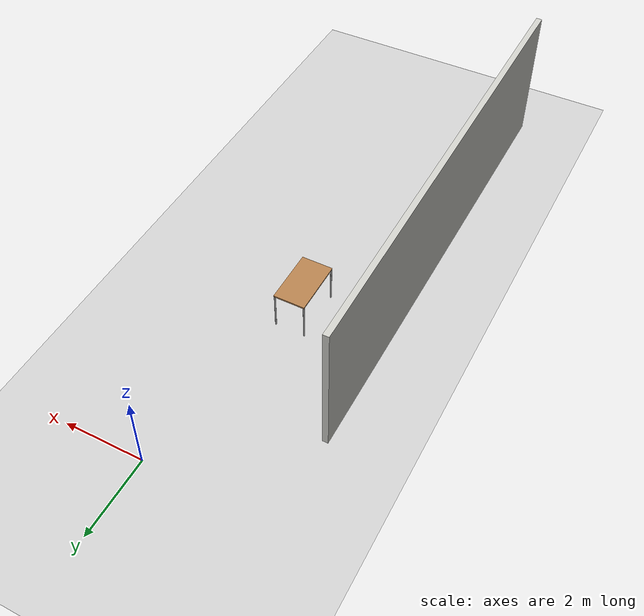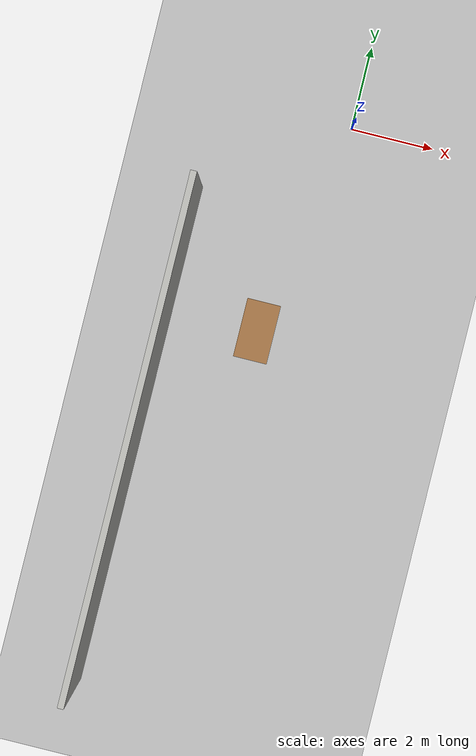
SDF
<sdf version="1.6">
 <world name="default">
  <model name="ground_plane">
   <static>1</static>
   <link name="link">
    <collision name="collision">
     <geometry><plane><normal>0 0 1</normal><size>100 100</size></plane></geometry>
     <surface><friction><ode><mu>100</mu><mu2>50</mu2></ode></friction></surface>
    </collision>
    <visual name="visual">
     <cast_shadows>0</cast_shadows>
     <geometry><plane><normal>0 0 1</normal><size>100 100</size></plane></geometry>
     <material>
      <script><uri>file://media/materials/scripts/gazebo.material</uri><name>Gazebo/Grey</name></script>
     </material>
    </visual>
   </link>
  </model>
  <model name="table_3_clone_clone_clone_0_clone">
   <static>0</static>
   <link name="link">
    <collision name="surface">
     <pose>0 0 1 0 -0 0</pose>
     <geometry><box><size>1.5 0.8 0.03</size></box></geometry>
     <surface><friction><ode><mu>0.6</mu><mu2>0.6</mu2></ode></friction></surface>
    </collision>
    <visual name="visual1">
     <pose>0 0 1 0 -0 0</pose>
     <geometry><box><size>1.4 0.8 0.04</size></box></geometry>
     <material>
      <script><uri>file://media/materials/scripts/gazebo.material</uri><name>Gazebo/Wood</name></script>
     </material>
    </visual>
    <collision name="front_left_leg">
     <pose>0.68 0.38 0.5 0 -0 0</pose>
     <geometry><cylinder><radius>0.02</radius><length>1</length></cylinder></geometry>
    </collision>
    <visual name="front_left_leg">
     <pose>0.68 0.38 0.5 0 -0 0</pose>
     <geometry><cylinder><radius>0.02</radius><length>1</length></cylinder></geometry>
     <material>
      <script><uri>file://media/materials/scripts/gazebo.material</uri><name>Gazebo/Grey</name></script>
     </material>
    </visual>
    <collision name="front_right_leg">
     <pose>0.68 -0.38 0.5 0 -0 0</pose>
     <geometry><cylinder><radius>0.02</radius><length>1</length></cylinder></geometry>
    </collision>
    <visual name="front_right_leg">
     <pose>0.68 -0.38 0.5 0 -0 0</pose>
     <geometry><cylinder><radius>0.02</radius><length>1</length></cylinder></geometry>
     <material>
      <script><uri>file://media/materials/scripts/gazebo.material</uri><name>Gazebo/Grey</name></script>
     </material>
    </visual>
    <collision name="back_right_leg">
     <pose>-0.68 -0.38 0.5 0 -0 0</pose>
     <geometry><cylinder><radius>0.02</radius><length>1</length></cylinder></geometry>
    </collision>
    <visual name="back_right_leg">
     <pose>-0.68 -0.38 0.5 0 -0 0</pose>
     <geometry><cylinder><radius>0.02</radius><length>1</length></cylinder></geometry>
     <material>
      <script><uri>file://media/materials/scripts/gazebo.material</uri><name>Gazebo/Grey</name></script>
     </material>
    </visual>
    <collision name="back_left_leg">
     <pose>-0.68 0.38 0.5 0 -0 0</pose>
     <geometry><cylinder><radius>0.02</radius><length>1</length></cylinder></geometry>
    </collision>
    <visual name="back_left_leg">
     <pose>-0.68 0.38 0.5 0 -0 0</pose>
     <geometry><cylinder><radius>0.02</radius><length>1</length></cylinder></geometry>
     <material>
      <script><uri>file://media/materials/scripts/gazebo.material</uri><name>Gazebo/Grey</name></script>
     </material>
    </visual>
    <inertial>
     <inertia><ixx>1</ixx><ixy>0</ixy><ixz>0</ixz><iyy>1</iyy><iyz>0</iyz><izz>1</izz></inertia>
     <mass>1</mass>
    </inertial>
   </link>
   <pose>-1.03399 -5.26338 -0 0 -0 1.57001</pose>
  </model>
  <model name="myfloorplan">
   <link name="Wall_15">
    <pose>-2 -10 0 0 0 -1.5708</pose>
    <visual name="Wall_15_Visual">
     <pose>0 0 1.8 0 -0 0</pose>
     <geometry><box><size>12.15 0.15 3.6</size></box></geometry>
     <material>
      <script><uri>file://media/materials/scripts/gazebo.material</uri><name>Gazebo/CeilingTiled</name></script>
      <ambient>1 1 0.498039 1</ambient>
     </material>
    </visual>
    <collision name="Wall_15_Collision">
     <pose>0 0 1.8 0 -0 0</pose>
     <geometry><box><size>12.15 0.15 3.6</size></box></geometry>
     <surface>
      <friction>
       <ode><mu>1</mu><mu2>1</mu2><fdir1>0 0 0</fdir1><slip1>0</slip1><slip2>0</slip2></ode>
       <torsional>
        <coefficient>1</coefficient>
        <patch_radius>0</patch_radius>
        <surface_radius>0</surface_radius>
        <use_patch_radius>1</use_patch_radius>
        <ode><slip>0</slip></ode>
       </torsional>
      </friction>
      <bounce><restitution_coefficient>0</restitution_coefficient><threshold>1e+06</threshold></bounce>
      <contact>
       <collide_without_contact>0</collide_without_contact>
       <collide_without_contact_bitmask>1</collide_without_contact_bitmask>
       <collide_bitmask>1</collide_bitmask>
       <ode>
        <soft_cfm>0</soft_cfm>
        <soft_erp>0.2</soft_erp>
        <kp>1e+13</kp>
        <kd>1</kd>
        <max_vel>0.01</max_vel>
        <min_depth>0</min_depth>
       </ode>
       <bullet>
        <split_impulse>1</split_impulse>
        <split_impulse_penetration_threshold>-0.01</split_impulse_penetration_threshold>
        <soft_cfm>0</soft_cfm>
        <soft_erp>0.2</soft_erp>
        <kp>1e+13</kp>
        <kd>1</kd>
       </bullet>
      </contact>
     </surface>
    </collision>
   </link>
   <static>1</static>
   <pose>-1.20922 1.7115 0 0 -0 0</pose>
  </model>
 </world>
</sdf>
